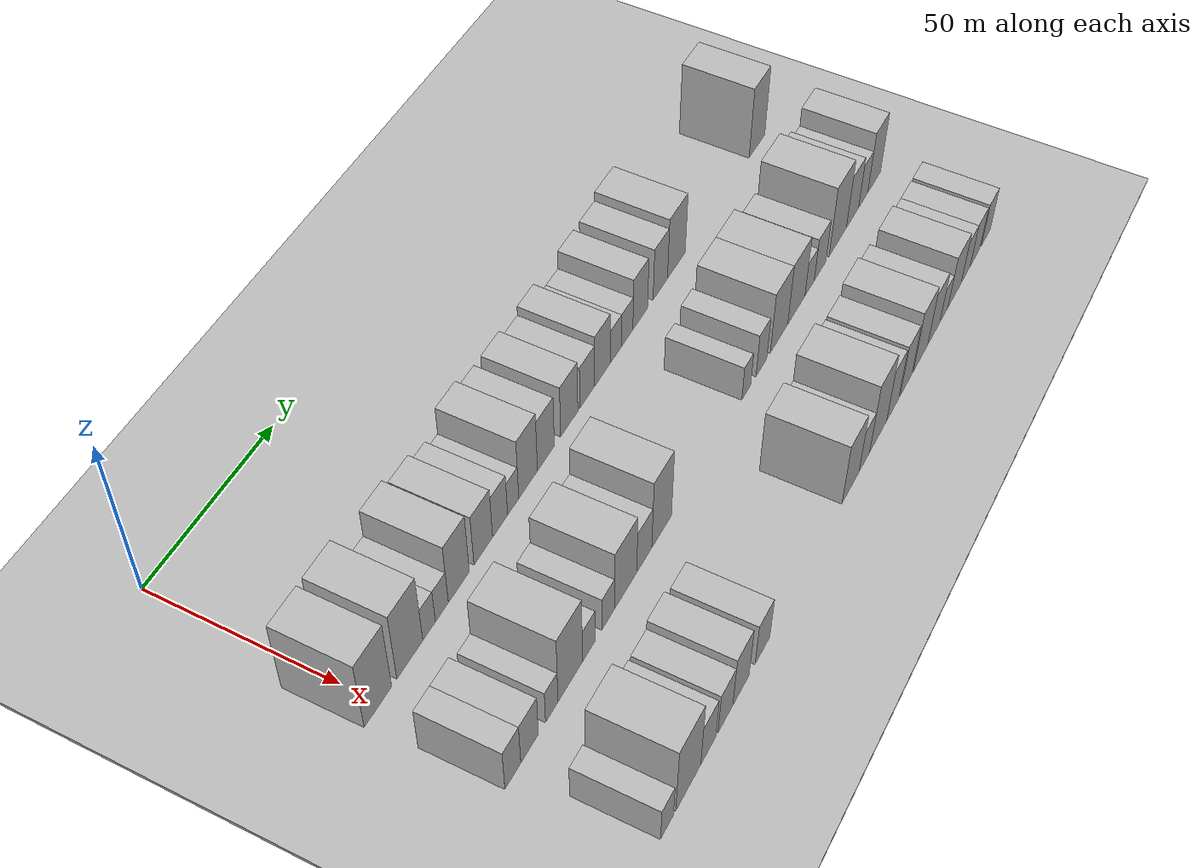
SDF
<sdf version="1.6">
 <world name="default">
  <include><name>ground_plane_1</name><uri>model://HANNAS_ground_plane</uri></include>
  <include>
   <name>ground_plane_2</name>
   <uri>model://HANNAS_ground_plane</uri>
   <pose>100 0 0  0 0 0</pose>
  </include>
  <model name="building_40">
   <static>1</static>
   <pose>50.0000 -1.1866 0 0.000000 0.000000 0.000000</pose>
   <link name="link">
    <pose>0 0 12.00 0 0 0</pose>
    <collision name="collision"><geometry><box><size>20.0000 10.6619 24.0000</size></box></geometry></collision>
    <visual name="visual">
     <cast_shadows>0</cast_shadows>
     <geometry><box><size>20.0000 10.6619 24.0000</size></box></geometry>
     <material>
      <script>
       <uri>model://HANNAS_wall/materials/scripts</uri>
       <uri>model://HANNAS_wall/materials/textures</uri>
       <name>vrc/HANNAS_wall</name>
      </script>
     </material>
    </visual>
   </link>
  </model>
  <model name="building_41">
   <static>1</static>
   <pose>50.0000 11.3441 0 0.000000 0.000000 0.000000</pose>
   <link name="link">
    <pose>0 0 12.00 0 0 0</pose>
    <collision name="collision"><geometry><box><size>20.0000 10.3995 24.0000</size></box></geometry></collision>
    <visual name="visual">
     <cast_shadows>0</cast_shadows>
     <geometry><box><size>20.0000 10.3995 24.0000</size></box></geometry>
     <material>
      <script>
       <uri>model://HANNAS_wall/materials/scripts</uri>
       <uri>model://HANNAS_wall/materials/textures</uri>
       <name>vrc/HANNAS_wall</name>
      </script>
     </material>
    </visual>
   </link>
  </model>
  <model name="building_42">
   <static>1</static>
   <pose>50.0000 19.1152 0 0.000000 0.000000 0.000000</pose>
   <link name="link">
    <pose>0 0 6.00 0 0 0</pose>
    <collision name="collision"><geometry><box><size>20.0000 5.1427 12.0000</size></box></geometry></collision>
    <visual name="visual">
     <cast_shadows>0</cast_shadows>
     <geometry><box><size>20.0000 5.1427 12.0000</size></box></geometry>
     <material>
      <script>
       <uri>model://HANNAS_wall/materials/scripts</uri>
       <uri>model://HANNAS_wall/materials/textures</uri>
       <name>vrc/HANNAS_wall</name>
      </script>
     </material>
    </visual>
   </link>
  </model>
  <model name="building_43">
   <static>1</static>
   <pose>50.0000 24.3787 0 0.000000 0.000000 0.000000</pose>
   <link name="link">
    <pose>0 0 6.00 0 0 0</pose>
    <collision name="collision"><geometry><box><size>20.0000 5.3844 12.0000</size></box></geometry></collision>
    <visual name="visual">
     <cast_shadows>0</cast_shadows>
     <geometry><box><size>20.0000 5.3844 12.0000</size></box></geometry>
     <material>
      <script>
       <uri>model://HANNAS_wall/materials/scripts</uri>
       <uri>model://HANNAS_wall/materials/textures</uri>
       <name>vrc/HANNAS_wall</name>
      </script>
     </material>
    </visual>
   </link>
  </model>
  <model name="building_44">
   <static>1</static>
   <pose>50.0000 31.5155 0 0.000000 0.000000 0.000000</pose>
   <link name="link">
    <pose>0 0 10.50 0 0 0</pose>
    <collision name="collision"><geometry><box><size>20.0000 8.8890 21.0000</size></box></geometry></collision>
    <visual name="visual">
     <cast_shadows>0</cast_shadows>
     <geometry><box><size>20.0000 8.8890 21.0000</size></box></geometry>
     <material>
      <script>
       <uri>model://HANNAS_wall/materials/scripts</uri>
       <uri>model://HANNAS_wall/materials/textures</uri>
       <name>vrc/HANNAS_wall</name>
      </script>
     </material>
    </visual>
   </link>
  </model>
  <model name="building_45">
   <static>1</static>
   <pose>50.0000 42.0223 0 0.000000 0.000000 0.000000</pose>
   <link name="link">
    <pose>0 0 9.00 0 0 0</pose>
    <collision name="collision"><geometry><box><size>20.0000 8.1246 18.0000</size></box></geometry></collision>
    <visual name="visual">
     <cast_shadows>0</cast_shadows>
     <geometry><box><size>20.0000 8.1246 18.0000</size></box></geometry>
     <material>
      <script>
       <uri>model://HANNAS_wall/materials/scripts</uri>
       <uri>model://HANNAS_wall/materials/textures</uri>
       <name>vrc/HANNAS_wall</name>
      </script>
     </material>
    </visual>
   </link>
  </model>
  <model name="building_46">
   <static>1</static>
   <pose>50.0000 49.4293 0 0.000000 0.000000 0.000000</pose>
   <link name="link">
    <pose>0 0 7.50 0 0 0</pose>
    <collision name="collision"><geometry><box><size>20.0000 6.6894 15.0000</size></box></geometry></collision>
    <visual name="visual">
     <cast_shadows>0</cast_shadows>
     <geometry><box><size>20.0000 6.6894 15.0000</size></box></geometry>
     <material>
      <script>
       <uri>model://HANNAS_wall/materials/scripts</uri>
       <uri>model://HANNAS_wall/materials/textures</uri>
       <name>vrc/HANNAS_wall</name>
      </script>
     </material>
    </visual>
   </link>
  </model>
  <model name="building_47">
   <static>1</static>
   <pose>50.0000 55.2964 0 0.000000 0.000000 0.000000</pose>
   <link name="link">
    <pose>0 0 6.00 0 0 0</pose>
    <collision name="collision"><geometry><box><size>20.0000 5.0448 12.0000</size></box></geometry></collision>
    <visual name="visual">
     <cast_shadows>0</cast_shadows>
     <geometry><box><size>20.0000 5.0448 12.0000</size></box></geometry>
     <material>
      <script>
       <uri>model://HANNAS_wall/materials/scripts</uri>
       <uri>model://HANNAS_wall/materials/textures</uri>
       <name>vrc/HANNAS_wall</name>
      </script>
     </material>
    </visual>
   </link>
  </model>
  <model name="building_48">
   <static>1</static>
   <pose>50.0000 62.1322 0 0.000000 0.000000 0.000000</pose>
   <link name="link">
    <pose>0 0 10.50 0 0 0</pose>
    <collision name="collision"><geometry><box><size>20.0000 8.6267 21.0000</size></box></geometry></collision>
    <visual name="visual">
     <cast_shadows>0</cast_shadows>
     <geometry><box><size>20.0000 8.6267 21.0000</size></box></geometry>
     <material>
      <script>
       <uri>model://HANNAS_wall/materials/scripts</uri>
       <uri>model://HANNAS_wall/materials/textures</uri>
       <name>vrc/HANNAS_wall</name>
      </script>
     </material>
    </visual>
   </link>
  </model>
  <model name="building_49">
   <static>1</static>
   <pose>50.0000 70.4046 0 0.000000 0.000000 0.000000</pose>
   <link name="link">
    <pose>0 0 9.00 0 0 0</pose>
    <collision name="collision"><geometry><box><size>20.0000 7.9182 18.0000</size></box></geometry></collision>
    <visual name="visual">
     <cast_shadows>0</cast_shadows>
     <geometry><box><size>20.0000 7.9182 18.0000</size></box></geometry>
     <material>
      <script>
       <uri>model://HANNAS_wall/materials/scripts</uri>
       <uri>model://HANNAS_wall/materials/textures</uri>
       <name>vrc/HANNAS_wall</name>
      </script>
     </material>
    </visual>
   </link>
  </model>
  <model name="building_50">
   <static>1</static>
   <pose>50.0000 81.5215 0 0.000000 0.000000 0.000000</pose>
   <link name="link">
    <pose>0 0 9.00 0 0 0</pose>
    <collision name="collision"><geometry><box><size>20.0000 8.3154 18.0000</size></box></geometry></collision>
    <visual name="visual">
     <cast_shadows>0</cast_shadows>
     <geometry><box><size>20.0000 8.3154 18.0000</size></box></geometry>
     <material>
      <script>
       <uri>model://HANNAS_wall/materials/scripts</uri>
       <uri>model://HANNAS_wall/materials/textures</uri>
       <name>vrc/HANNAS_wall</name>
      </script>
     </material>
    </visual>
   </link>
  </model>
  <model name="building_51">
   <static>1</static>
   <pose>50.0000 90.3698 0 0.000000 0.000000 0.000000</pose>
   <link name="link">
    <pose>0 0 7.50 0 0 0</pose>
    <collision name="collision"><geometry><box><size>20.0000 7.3812 15.0000</size></box></geometry></collision>
    <visual name="visual">
     <cast_shadows>0</cast_shadows>
     <geometry><box><size>20.0000 7.3812 15.0000</size></box></geometry>
     <material>
      <script>
       <uri>model://HANNAS_wall/materials/scripts</uri>
       <uri>model://HANNAS_wall/materials/textures</uri>
       <name>vrc/HANNAS_wall</name>
      </script>
     </material>
    </visual>
   </link>
  </model>
  <model name="building_52">
   <static>1</static>
   <pose>50.0000 97.9597 0 0.000000 0.000000 0.000000</pose>
   <link name="link">
    <pose>0 0 9.00 0 0 0</pose>
    <collision name="collision"><geometry><box><size>20.0000 7.7986 18.0000</size></box></geometry></collision>
    <visual name="visual">
     <cast_shadows>0</cast_shadows>
     <geometry><box><size>20.0000 7.7986 18.0000</size></box></geometry>
     <material>
      <script>
       <uri>model://HANNAS_wall/materials/scripts</uri>
       <uri>model://HANNAS_wall/materials/textures</uri>
       <name>vrc/HANNAS_wall</name>
      </script>
     </material>
    </visual>
   </link>
  </model>
  <model name="building_53">
   <static>1</static>
   <pose>50.0000 104.7630 0 0.000000 0.000000 0.000000</pose>
   <link name="link">
    <pose>0 0 6.00 0 0 0</pose>
    <collision name="collision"><geometry><box><size>20.0000 5.8080 12.0000</size></box></geometry></collision>
    <visual name="visual">
     <cast_shadows>0</cast_shadows>
     <geometry><box><size>20.0000 5.8080 12.0000</size></box></geometry>
     <material>
      <script>
       <uri>model://HANNAS_wall/materials/scripts</uri>
       <uri>model://HANNAS_wall/materials/textures</uri>
       <name>vrc/HANNAS_wall</name>
      </script>
     </material>
    </visual>
   </link>
  </model>
  <model name="building_54">
   <static>1</static>
   <pose>50.0000 110.6468 0 0.000000 0.000000 0.000000</pose>
   <link name="link">
    <pose>0 0 6.00 0 0 0</pose>
    <collision name="collision"><geometry><box><size>20.0000 5.9596 12.0000</size></box></geometry></collision>
    <visual name="visual">
     <cast_shadows>0</cast_shadows>
     <geometry><box><size>20.0000 5.9596 12.0000</size></box></geometry>
     <material>
      <script>
       <uri>model://HANNAS_wall/materials/scripts</uri>
       <uri>model://HANNAS_wall/materials/textures</uri>
       <name>vrc/HANNAS_wall</name>
      </script>
     </material>
    </visual>
   </link>
  </model>
  <model name="building_55">
   <static>1</static>
   <pose>50.0000 117.5337 0 0.000000 0.000000 0.000000</pose>
   <link name="link">
    <pose>0 0 9.00 0 0 0</pose>
    <collision name="collision"><geometry><box><size>20.0000 7.8141 18.0000</size></box></geometry></collision>
    <visual name="visual">
     <cast_shadows>0</cast_shadows>
     <geometry><box><size>20.0000 7.8141 18.0000</size></box></geometry>
     <material>
      <script>
       <uri>model://HANNAS_wall/materials/scripts</uri>
       <uri>model://HANNAS_wall/materials/textures</uri>
       <name>vrc/HANNAS_wall</name>
      </script>
     </material>
    </visual>
   </link>
  </model>
  <model name="building_56">
   <static>1</static>
   <pose>50.0000 128.3599 0 0.000000 0.000000 0.000000</pose>
   <link name="link">
    <pose>0 0 9.00 0 0 0</pose>
    <collision name="collision"><geometry><box><size>20.0000 7.8384 18.0000</size></box></geometry></collision>
    <visual name="visual">
     <cast_shadows>0</cast_shadows>
     <geometry><box><size>20.0000 7.8384 18.0000</size></box></geometry>
     <material>
      <script>
       <uri>model://HANNAS_wall/materials/scripts</uri>
       <uri>model://HANNAS_wall/materials/textures</uri>
       <name>vrc/HANNAS_wall</name>
      </script>
     </material>
    </visual>
   </link>
  </model>
  <model name="building_57">
   <static>1</static>
   <pose>50.0000 137.2227 0 0.000000 0.000000 0.000000</pose>
   <link name="link">
    <pose>0 0 10.50 0 0 0</pose>
    <collision name="collision"><geometry><box><size>20.0000 9.8872 21.0000</size></box></geometry></collision>
    <visual name="visual">
     <cast_shadows>0</cast_shadows>
     <geometry><box><size>20.0000 9.8872 21.0000</size></box></geometry>
     <material>
      <script>
       <uri>model://HANNAS_wall/materials/scripts</uri>
       <uri>model://HANNAS_wall/materials/textures</uri>
       <name>vrc/HANNAS_wall</name>
      </script>
     </material>
    </visual>
   </link>
  </model>
  <model name="building_58">
   <static>1</static>
   <pose>50.0000 184.7847 0 0.000000 0.000000 0.000000</pose>
   <link name="link">
    <pose>0 0 12.00 0 0 0</pose>
    <collision name="collision"><geometry><box><size>20.0000 9.7456 24.0000</size></box></geometry></collision>
    <visual name="visual">
     <cast_shadows>0</cast_shadows>
     <geometry><box><size>20.0000 9.7456 24.0000</size></box></geometry>
     <material>
      <script>
       <uri>model://HANNAS_wall/materials/scripts</uri>
       <uri>model://HANNAS_wall/materials/textures</uri>
       <name>vrc/HANNAS_wall</name>
      </script>
     </material>
    </visual>
   </link>
  </model>
  <model name="building_117">
   <static>1</static>
   <pose>82.0000 -2.1191 0 0.000000 0.000000 0.000000</pose>
   <link name="link">
    <pose>0 0 7.50 0 0 0</pose>
    <collision name="collision"><geometry><box><size>20.0000 6.4938 15.0000</size></box></geometry></collision>
    <visual name="visual">
     <cast_shadows>0</cast_shadows>
     <geometry><box><size>20.0000 6.4938 15.0000</size></box></geometry>
     <material>
      <script>
       <uri>model://HANNAS_wall/materials/scripts</uri>
       <uri>model://HANNAS_wall/materials/textures</uri>
       <name>vrc/HANNAS_wall</name>
      </script>
     </material>
    </visual>
   </link>
  </model>
  <model name="building_118">
   <static>1</static>
   <pose>82.0000 4.7765 0 0.000000 0.000000 0.000000</pose>
   <link name="link">
    <pose>0 0 7.50 0 0 0</pose>
    <collision name="collision"><geometry><box><size>20.0000 7.2974 15.0000</size></box></geometry></collision>
    <visual name="visual">
     <cast_shadows>0</cast_shadows>
     <geometry><box><size>20.0000 7.2974 15.0000</size></box></geometry>
     <material>
      <script>
       <uri>model://HANNAS_wall/materials/scripts</uri>
       <uri>model://HANNAS_wall/materials/textures</uri>
       <name>vrc/HANNAS_wall</name>
      </script>
     </material>
    </visual>
   </link>
  </model>
  <model name="building_119">
   <static>1</static>
   <pose>82.0000 14.0890 0 0.000000 0.000000 0.000000</pose>
   <link name="link">
    <pose>0 0 6.00 0 0 0</pose>
    <collision name="collision"><geometry><box><size>20.0000 5.3276 12.0000</size></box></geometry></collision>
    <visual name="visual">
     <cast_shadows>0</cast_shadows>
     <geometry><box><size>20.0000 5.3276 12.0000</size></box></geometry>
     <material>
      <script>
       <uri>model://HANNAS_wall/materials/scripts</uri>
       <uri>model://HANNAS_wall/materials/textures</uri>
       <name>vrc/HANNAS_wall</name>
      </script>
     </material>
    </visual>
   </link>
  </model>
  <model name="building_120">
   <static>1</static>
   <pose>82.0000 22.0814 0 0.000000 0.000000 0.000000</pose>
   <link name="link">
    <pose>0 0 12.00 0 0 0</pose>
    <collision name="collision"><geometry><box><size>20.0000 10.6571 24.0000</size></box></geometry></collision>
    <visual name="visual">
     <cast_shadows>0</cast_shadows>
     <geometry><box><size>20.0000 10.6571 24.0000</size></box></geometry>
     <material>
      <script>
       <uri>model://HANNAS_wall/materials/scripts</uri>
       <uri>model://HANNAS_wall/materials/textures</uri>
       <name>vrc/HANNAS_wall</name>
      </script>
     </material>
    </visual>
   </link>
  </model>
  <model name="building_121">
   <static>1</static>
   <pose>82.0000 30.2890 0 0.000000 0.000000 0.000000</pose>
   <link name="link">
    <pose>0 0 6.00 0 0 0</pose>
    <collision name="collision"><geometry><box><size>20.0000 5.7581 12.0000</size></box></geometry></collision>
    <visual name="visual">
     <cast_shadows>0</cast_shadows>
     <geometry><box><size>20.0000 5.7581 12.0000</size></box></geometry>
     <material>
      <script>
       <uri>model://HANNAS_wall/materials/scripts</uri>
       <uri>model://HANNAS_wall/materials/textures</uri>
       <name>vrc/HANNAS_wall</name>
      </script>
     </material>
    </visual>
   </link>
  </model>
  <model name="building_122">
   <static>1</static>
   <pose>82.0000 39.0336 0 0.000000 0.000000 0.000000</pose>
   <link name="link">
    <pose>0 0 6.00 0 0 0</pose>
    <collision name="collision"><geometry><box><size>20.0000 5.7312 12.0000</size></box></geometry></collision>
    <visual name="visual">
     <cast_shadows>0</cast_shadows>
     <geometry><box><size>20.0000 5.7312 12.0000</size></box></geometry>
     <material>
      <script>
       <uri>model://HANNAS_wall/materials/scripts</uri>
       <uri>model://HANNAS_wall/materials/textures</uri>
       <name>vrc/HANNAS_wall</name>
      </script>
     </material>
    </visual>
   </link>
  </model>
  <model name="building_123">
   <static>1</static>
   <pose>82.0000 47.1243 0 0.000000 0.000000 0.000000</pose>
   <link name="link">
    <pose>0 0 10.50 0 0 0</pose>
    <collision name="collision"><geometry><box><size>20.0000 10.4504 21.0000</size></box></geometry></collision>
    <visual name="visual">
     <cast_shadows>0</cast_shadows>
     <geometry><box><size>20.0000 10.4504 21.0000</size></box></geometry>
     <material>
      <script>
       <uri>model://HANNAS_wall/materials/scripts</uri>
       <uri>model://HANNAS_wall/materials/textures</uri>
       <name>vrc/HANNAS_wall</name>
      </script>
     </material>
    </visual>
   </link>
  </model>
  <model name="building_124">
   <static>1</static>
   <pose>82.0000 55.9813 0 0.000000 0.000000 0.000000</pose>
   <link name="link">
    <pose>0 0 7.50 0 0 0</pose>
    <collision name="collision"><geometry><box><size>20.0000 7.2635 15.0000</size></box></geometry></collision>
    <visual name="visual">
     <cast_shadows>0</cast_shadows>
     <geometry><box><size>20.0000 7.2635 15.0000</size></box></geometry>
     <material>
      <script>
       <uri>model://HANNAS_wall/materials/scripts</uri>
       <uri>model://HANNAS_wall/materials/textures</uri>
       <name>vrc/HANNAS_wall</name>
      </script>
     </material>
    </visual>
   </link>
  </model>
  <model name="building_125">
   <static>1</static>
   <pose>82.0000 64.4504 0 0.000000 0.000000 0.000000</pose>
   <link name="link">
    <pose>0 0 12.00 0 0 0</pose>
    <collision name="collision"><geometry><box><size>20.0000 9.6747 24.0000</size></box></geometry></collision>
    <visual name="visual">
     <cast_shadows>0</cast_shadows>
     <geometry><box><size>20.0000 9.6747 24.0000</size></box></geometry>
     <material>
      <script>
       <uri>model://HANNAS_wall/materials/scripts</uri>
       <uri>model://HANNAS_wall/materials/textures</uri>
       <name>vrc/HANNAS_wall</name>
      </script>
     </material>
    </visual>
   </link>
  </model>
  <model name="building_126">
   <static>1</static>
   <pose>82.0000 108.6008 0 0.000000 0.000000 0.000000</pose>
   <link name="link">
    <pose>0 0 6.00 0 0 0</pose>
    <collision name="collision"><geometry><box><size>20.0000 4.8754 12.0000</size></box></geometry></collision>
    <visual name="visual">
     <cast_shadows>0</cast_shadows>
     <geometry><box><size>20.0000 4.8754 12.0000</size></box></geometry>
     <material>
      <script>
       <uri>model://HANNAS_wall/materials/scripts</uri>
       <uri>model://HANNAS_wall/materials/textures</uri>
       <name>vrc/HANNAS_wall</name>
      </script>
     </material>
    </visual>
   </link>
  </model>
  <model name="building_127">
   <static>1</static>
   <pose>82.0000 117.0659 0 0.000000 0.000000 0.000000</pose>
   <link name="link">
    <pose>0 0 7.50 0 0 0</pose>
    <collision name="collision"><geometry><box><size>20.0000 6.0547 15.0000</size></box></geometry></collision>
    <visual name="visual">
     <cast_shadows>0</cast_shadows>
     <geometry><box><size>20.0000 6.0547 15.0000</size></box></geometry>
     <material>
      <script>
       <uri>model://HANNAS_wall/materials/scripts</uri>
       <uri>model://HANNAS_wall/materials/textures</uri>
       <name>vrc/HANNAS_wall</name>
      </script>
     </material>
    </visual>
   </link>
  </model>
  <model name="building_128">
   <static>1</static>
   <pose>82.0000 127.1640 0 0.000000 0.000000 0.000000</pose>
   <link name="link">
    <pose>0 0 10.50 0 0 0</pose>
    <collision name="collision"><geometry><box><size>20.0000 10.1416 21.0000</size></box></geometry></collision>
    <visual name="visual">
     <cast_shadows>0</cast_shadows>
     <geometry><box><size>20.0000 10.1416 21.0000</size></box></geometry>
     <material>
      <script>
       <uri>model://HANNAS_wall/materials/scripts</uri>
       <uri>model://HANNAS_wall/materials/textures</uri>
       <name>vrc/HANNAS_wall</name>
      </script>
     </material>
    </visual>
   </link>
  </model>
  <model name="building_129">
   <static>1</static>
   <pose>82.0000 137.3584 0 0.000000 0.000000 0.000000</pose>
   <link name="link">
    <pose>0 0 10.50 0 0 0</pose>
    <collision name="collision"><geometry><box><size>20.0000 10.2473 21.0000</size></box></geometry></collision>
    <visual name="visual">
     <cast_shadows>0</cast_shadows>
     <geometry><box><size>20.0000 10.2473 21.0000</size></box></geometry>
     <material>
      <script>
       <uri>model://HANNAS_wall/materials/scripts</uri>
       <uri>model://HANNAS_wall/materials/textures</uri>
       <name>vrc/HANNAS_wall</name>
      </script>
     </material>
    </visual>
   </link>
  </model>
  <model name="building_130">
   <static>1</static>
   <pose>82.0000 145.2999 0 0.000000 0.000000 0.000000</pose>
   <link name="link">
    <pose>0 0 6.00 0 0 0</pose>
    <collision name="collision"><geometry><box><size>20.0000 5.6356 12.0000</size></box></geometry></collision>
    <visual name="visual">
     <cast_shadows>0</cast_shadows>
     <geometry><box><size>20.0000 5.6356 12.0000</size></box></geometry>
     <material>
      <script>
       <uri>model://HANNAS_wall/materials/scripts</uri>
       <uri>model://HANNAS_wall/materials/textures</uri>
       <name>vrc/HANNAS_wall</name>
      </script>
     </material>
    </visual>
   </link>
  </model>
  <model name="building_131">
   <static>1</static>
   <pose>82.0000 151.7029 0 0.000000 0.000000 0.000000</pose>
   <link name="link">
    <pose>0 0 7.50 0 0 0</pose>
    <collision name="collision"><geometry><box><size>20.0000 7.1705 15.0000</size></box></geometry></collision>
    <visual name="visual">
     <cast_shadows>0</cast_shadows>
     <geometry><box><size>20.0000 7.1705 15.0000</size></box></geometry>
     <material>
      <script>
       <uri>model://HANNAS_wall/materials/scripts</uri>
       <uri>model://HANNAS_wall/materials/textures</uri>
       <name>vrc/HANNAS_wall</name>
      </script>
     </material>
    </visual>
   </link>
  </model>
  <model name="building_132">
   <static>1</static>
   <pose>82.0000 162.7626 0 0.000000 0.000000 0.000000</pose>
   <link name="link">
    <pose>0 0 12.00 0 0 0</pose>
    <collision name="collision"><geometry><box><size>20.0000 10.9488 24.0000</size></box></geometry></collision>
    <visual name="visual">
     <cast_shadows>0</cast_shadows>
     <geometry><box><size>20.0000 10.9488 24.0000</size></box></geometry>
     <material>
      <script>
       <uri>model://HANNAS_wall/materials/scripts</uri>
       <uri>model://HANNAS_wall/materials/textures</uri>
       <name>vrc/HANNAS_wall</name>
      </script>
     </material>
    </visual>
   </link>
  </model>
  <model name="building_133">
   <static>1</static>
   <pose>82.0000 172.1983 0 0.000000 0.000000 0.000000</pose>
   <link name="link">
    <pose>0 0 9.00 0 0 0</pose>
    <collision name="collision"><geometry><box><size>20.0000 7.9226 18.0000</size></box></geometry></collision>
    <visual name="visual">
     <cast_shadows>0</cast_shadows>
     <geometry><box><size>20.0000 7.9226 18.0000</size></box></geometry>
     <material>
      <script>
       <uri>model://HANNAS_wall/materials/scripts</uri>
       <uri>model://HANNAS_wall/materials/textures</uri>
       <name>vrc/HANNAS_wall</name>
      </script>
     </material>
    </visual>
   </link>
  </model>
  <model name="building_134">
   <static>1</static>
   <pose>82.0000 179.1615 0 0.000000 0.000000 0.000000</pose>
   <link name="link">
    <pose>0 0 7.50 0 0 0</pose>
    <collision name="collision"><geometry><box><size>20.0000 6.0038 15.0000</size></box></geometry></collision>
    <visual name="visual">
     <cast_shadows>0</cast_shadows>
     <geometry><box><size>20.0000 6.0038 15.0000</size></box></geometry>
     <material>
      <script>
       <uri>model://HANNAS_wall/materials/scripts</uri>
       <uri>model://HANNAS_wall/materials/textures</uri>
       <name>vrc/HANNAS_wall</name>
      </script>
     </material>
    </visual>
   </link>
  </model>
  <model name="building_135">
   <static>1</static>
   <pose>82.0000 186.4365 0 0.000000 0.000000 0.000000</pose>
   <link name="link">
    <pose>0 0 10.50 0 0 0</pose>
    <collision name="collision"><geometry><box><size>20.0000 8.5461 21.0000</size></box></geometry></collision>
    <visual name="visual">
     <cast_shadows>0</cast_shadows>
     <geometry><box><size>20.0000 8.5461 21.0000</size></box></geometry>
     <material>
      <script>
       <uri>model://HANNAS_wall/materials/scripts</uri>
       <uri>model://HANNAS_wall/materials/textures</uri>
       <name>vrc/HANNAS_wall</name>
      </script>
     </material>
    </visual>
   </link>
  </model>
  <model name="building_188">
   <static>1</static>
   <pose>114.0000 2.1657 0 0.000000 0.000000 0.000000</pose>
   <link name="link">
    <pose>0 0 6.00 0 0 0</pose>
    <collision name="collision"><geometry><box><size>20.0000 5.6967 12.0000</size></box></geometry></collision>
    <visual name="visual">
     <cast_shadows>0</cast_shadows>
     <geometry><box><size>20.0000 5.6967 12.0000</size></box></geometry>
     <material>
      <script>
       <uri>model://HANNAS_wall/materials/scripts</uri>
       <uri>model://HANNAS_wall/materials/textures</uri>
       <name>vrc/HANNAS_wall</name>
      </script>
     </material>
    </visual>
   </link>
  </model>
  <model name="building_189">
   <static>1</static>
   <pose>114.0000 11.6921 0 0.000000 0.000000 0.000000</pose>
   <link name="link">
    <pose>0 0 12.00 0 0 0</pose>
    <collision name="collision"><geometry><box><size>20.0000 11.3561 24.0000</size></box></geometry></collision>
    <visual name="visual">
     <cast_shadows>0</cast_shadows>
     <geometry><box><size>20.0000 11.3561 24.0000</size></box></geometry>
     <material>
      <script>
       <uri>model://HANNAS_wall/materials/scripts</uri>
       <uri>model://HANNAS_wall/materials/textures</uri>
       <name>vrc/HANNAS_wall</name>
      </script>
     </material>
    </visual>
   </link>
  </model>
  <model name="building_190">
   <static>1</static>
   <pose>114.0000 20.9052 0 0.000000 0.000000 0.000000</pose>
   <link name="link">
    <pose>0 0 7.50 0 0 0</pose>
    <collision name="collision"><geometry><box><size>20.0000 7.0702 15.0000</size></box></geometry></collision>
    <visual name="visual">
     <cast_shadows>0</cast_shadows>
     <geometry><box><size>20.0000 7.0702 15.0000</size></box></geometry>
     <material>
      <script>
       <uri>model://HANNAS_wall/materials/scripts</uri>
       <uri>model://HANNAS_wall/materials/textures</uri>
       <name>vrc/HANNAS_wall</name>
      </script>
     </material>
    </visual>
   </link>
  </model>
  <model name="building_191">
   <static>1</static>
   <pose>114.0000 28.9854 0 0.000000 0.000000 0.000000</pose>
   <link name="link">
    <pose>0 0 7.50 0 0 0</pose>
    <collision name="collision"><geometry><box><size>20.0000 7.0901 15.0000</size></box></geometry></collision>
    <visual name="visual">
     <cast_shadows>0</cast_shadows>
     <geometry><box><size>20.0000 7.0901 15.0000</size></box></geometry>
     <material>
      <script>
       <uri>model://HANNAS_wall/materials/scripts</uri>
       <uri>model://HANNAS_wall/materials/textures</uri>
       <name>vrc/HANNAS_wall</name>
      </script>
     </material>
    </visual>
   </link>
  </model>
  <model name="building_192">
   <static>1</static>
   <pose>114.0000 36.4789 0 0.000000 0.000000 0.000000</pose>
   <link name="link">
    <pose>0 0 9.00 0 0 0</pose>
    <collision name="collision"><geometry><box><size>20.0000 7.8969 18.0000</size></box></geometry></collision>
    <visual name="visual">
     <cast_shadows>0</cast_shadows>
     <geometry><box><size>20.0000 7.8969 18.0000</size></box></geometry>
     <material>
      <script>
       <uri>model://HANNAS_wall/materials/scripts</uri>
       <uri>model://HANNAS_wall/materials/textures</uri>
       <name>vrc/HANNAS_wall</name>
      </script>
     </material>
    </visual>
   </link>
  </model>
  <model name="building_193">
   <static>1</static>
   <pose>114.0000 47.1405 0 0.000000 0.000000 0.000000</pose>
   <link name="link">
    <pose>0 0 7.50 0 0 0</pose>
    <collision name="collision"><geometry><box><size>20.0000 7.4263 15.0000</size></box></geometry></collision>
    <visual name="visual">
     <cast_shadows>0</cast_shadows>
     <geometry><box><size>20.0000 7.4263 15.0000</size></box></geometry>
     <material>
      <script>
       <uri>model://HANNAS_wall/materials/scripts</uri>
       <uri>model://HANNAS_wall/materials/textures</uri>
       <name>vrc/HANNAS_wall</name>
      </script>
     </material>
    </visual>
   </link>
  </model>
  <model name="building_194">
   <static>1</static>
   <pose>114.0000 94.4820 0 0.000000 0.000000 0.000000</pose>
   <link name="link">
    <pose>0 0 10.50 0 0 0</pose>
    <collision name="collision"><geometry><box><size>20.0000 9.7523 21.0000</size></box></geometry></collision>
    <visual name="visual">
     <cast_shadows>0</cast_shadows>
     <geometry><box><size>20.0000 9.7523 21.0000</size></box></geometry>
     <material>
      <script>
       <uri>model://HANNAS_wall/materials/scripts</uri>
       <uri>model://HANNAS_wall/materials/textures</uri>
       <name>vrc/HANNAS_wall</name>
      </script>
     </material>
    </visual>
   </link>
  </model>
  <model name="building_195">
   <static>1</static>
   <pose>114.0000 102.4522 0 0.000000 0.000000 0.000000</pose>
   <link name="link">
    <pose>0 0 7.50 0 0 0</pose>
    <collision name="collision"><geometry><box><size>20.0000 6.1882 15.0000</size></box></geometry></collision>
    <visual name="visual">
     <cast_shadows>0</cast_shadows>
     <geometry><box><size>20.0000 6.1882 15.0000</size></box></geometry>
     <material>
      <script>
       <uri>model://HANNAS_wall/materials/scripts</uri>
       <uri>model://HANNAS_wall/materials/textures</uri>
       <name>vrc/HANNAS_wall</name>
      </script>
     </material>
    </visual>
   </link>
  </model>
  <model name="building_196">
   <static>1</static>
   <pose>114.0000 110.6788 0 0.000000 0.000000 0.000000</pose>
   <link name="link">
    <pose>0 0 12.00 0 0 0</pose>
    <collision name="collision"><geometry><box><size>20.0000 10.2648 24.0000</size></box></geometry></collision>
    <visual name="visual">
     <cast_shadows>0</cast_shadows>
     <geometry><box><size>20.0000 10.2648 24.0000</size></box></geometry>
     <material>
      <script>
       <uri>model://HANNAS_wall/materials/scripts</uri>
       <uri>model://HANNAS_wall/materials/textures</uri>
       <name>vrc/HANNAS_wall</name>
      </script>
     </material>
    </visual>
   </link>
  </model>
  <model name="building_197">
   <static>1</static>
   <pose>114.0000 119.4177 0 0.000000 0.000000 0.000000</pose>
   <link name="link">
    <pose>0 0 9.00 0 0 0</pose>
    <collision name="collision"><geometry><box><size>20.0000 7.2129 18.0000</size></box></geometry></collision>
    <visual name="visual">
     <cast_shadows>0</cast_shadows>
     <geometry><box><size>20.0000 7.2129 18.0000</size></box></geometry>
     <material>
      <script>
       <uri>model://HANNAS_wall/materials/scripts</uri>
       <uri>model://HANNAS_wall/materials/textures</uri>
       <name>vrc/HANNAS_wall</name>
      </script>
     </material>
    </visual>
   </link>
  </model>
  <model name="building_198">
   <static>1</static>
   <pose>114.0000 127.6943 0 0.000000 0.000000 0.000000</pose>
   <link name="link">
    <pose>0 0 9.00 0 0 0</pose>
    <collision name="collision"><geometry><box><size>20.0000 7.3404 18.0000</size></box></geometry></collision>
    <visual name="visual">
     <cast_shadows>0</cast_shadows>
     <geometry><box><size>20.0000 7.3404 18.0000</size></box></geometry>
     <material>
      <script>
       <uri>model://HANNAS_wall/materials/scripts</uri>
       <uri>model://HANNAS_wall/materials/textures</uri>
       <name>vrc/HANNAS_wall</name>
      </script>
     </material>
    </visual>
   </link>
  </model>
  <model name="building_199">
   <static>1</static>
   <pose>114.0000 136.9642 0 0.000000 0.000000 0.000000</pose>
   <link name="link">
    <pose>0 0 10.50 0 0 0</pose>
    <collision name="collision"><geometry><box><size>20.0000 9.1994 21.0000</size></box></geometry></collision>
    <visual name="visual">
     <cast_shadows>0</cast_shadows>
     <geometry><box><size>20.0000 9.1994 21.0000</size></box></geometry>
     <material>
      <script>
       <uri>model://HANNAS_wall/materials/scripts</uri>
       <uri>model://HANNAS_wall/materials/textures</uri>
       <name>vrc/HANNAS_wall</name>
      </script>
     </material>
    </visual>
   </link>
  </model>
  <model name="building_200">
   <static>1</static>
   <pose>114.0000 145.5377 0 0.000000 0.000000 0.000000</pose>
   <link name="link">
    <pose>0 0 9.00 0 0 0</pose>
    <collision name="collision"><geometry><box><size>20.0000 7.9476 18.0000</size></box></geometry></collision>
    <visual name="visual">
     <cast_shadows>0</cast_shadows>
     <geometry><box><size>20.0000 7.9476 18.0000</size></box></geometry>
     <material>
      <script>
       <uri>model://HANNAS_wall/materials/scripts</uri>
       <uri>model://HANNAS_wall/materials/textures</uri>
       <name>vrc/HANNAS_wall</name>
      </script>
     </material>
    </visual>
   </link>
  </model>
  <model name="building_201">
   <static>1</static>
   <pose>114.0000 152.1991 0 0.000000 0.000000 0.000000</pose>
   <link name="link">
    <pose>0 0 6.00 0 0 0</pose>
    <collision name="collision"><geometry><box><size>20.0000 5.3752 12.0000</size></box></geometry></collision>
    <visual name="visual">
     <cast_shadows>0</cast_shadows>
     <geometry><box><size>20.0000 5.3752 12.0000</size></box></geometry>
     <material>
      <script>
       <uri>model://HANNAS_wall/materials/scripts</uri>
       <uri>model://HANNAS_wall/materials/textures</uri>
       <name>vrc/HANNAS_wall</name>
      </script>
     </material>
    </visual>
   </link>
  </model>
  <model name="building_202">
   <static>1</static>
   <pose>114.0000 159.3709 0 0.000000 0.000000 0.000000</pose>
   <link name="link">
    <pose>0 0 9.00 0 0 0</pose>
    <collision name="collision"><geometry><box><size>20.0000 8.9683 18.0000</size></box></geometry></collision>
    <visual name="visual">
     <cast_shadows>0</cast_shadows>
     <geometry><box><size>20.0000 8.9683 18.0000</size></box></geometry>
     <material>
      <script>
       <uri>model://HANNAS_wall/materials/scripts</uri>
       <uri>model://HANNAS_wall/materials/textures</uri>
       <name>vrc/HANNAS_wall</name>
      </script>
     </material>
    </visual>
   </link>
  </model>
  <model name="building_203">
   <static>1</static>
   <pose>114.0000 166.9862 0 0.000000 0.000000 0.000000</pose>
   <link name="link">
    <pose>0 0 7.50 0 0 0</pose>
    <collision name="collision"><geometry><box><size>20.0000 6.2623 15.0000</size></box></geometry></collision>
    <visual name="visual">
     <cast_shadows>0</cast_shadows>
     <geometry><box><size>20.0000 6.2623 15.0000</size></box></geometry>
     <material>
      <script>
       <uri>model://HANNAS_wall/materials/scripts</uri>
       <uri>model://HANNAS_wall/materials/textures</uri>
       <name>vrc/HANNAS_wall</name>
      </script>
     </material>
    </visual>
   </link>
  </model>
  <model name="building_204">
   <static>1</static>
   <pose>114.0000 173.4697 0 0.000000 0.000000 0.000000</pose>
   <link name="link">
    <pose>0 0 7.50 0 0 0</pose>
    <collision name="collision"><geometry><box><size>20.0000 6.7047 15.0000</size></box></geometry></collision>
    <visual name="visual">
     <cast_shadows>0</cast_shadows>
     <geometry><box><size>20.0000 6.7047 15.0000</size></box></geometry>
     <material>
      <script>
       <uri>model://HANNAS_wall/materials/scripts</uri>
       <uri>model://HANNAS_wall/materials/textures</uri>
       <name>vrc/HANNAS_wall</name>
      </script>
     </material>
    </visual>
   </link>
  </model>
  <model name="building_205">
   <static>1</static>
   <pose>114.0000 181.1130 0 0.000000 0.000000 0.000000</pose>
   <link name="link">
    <pose>0 0 7.50 0 0 0</pose>
    <collision name="collision"><geometry><box><size>20.0000 6.5818 15.0000</size></box></geometry></collision>
    <visual name="visual">
     <cast_shadows>0</cast_shadows>
     <geometry><box><size>20.0000 6.5818 15.0000</size></box></geometry>
     <material>
      <script>
       <uri>model://HANNAS_wall/materials/scripts</uri>
       <uri>model://HANNAS_wall/materials/textures</uri>
       <name>vrc/HANNAS_wall</name>
      </script>
     </material>
    </visual>
   </link>
  </model>
 </world>
</sdf>
